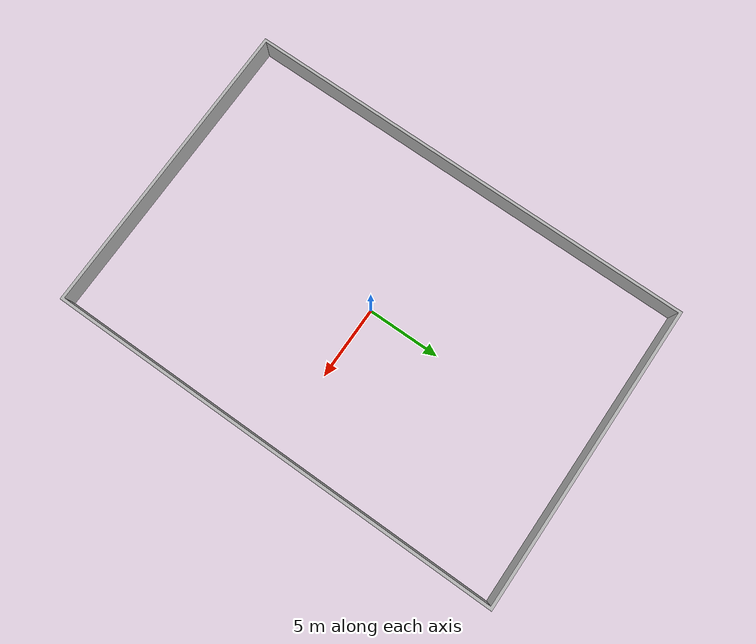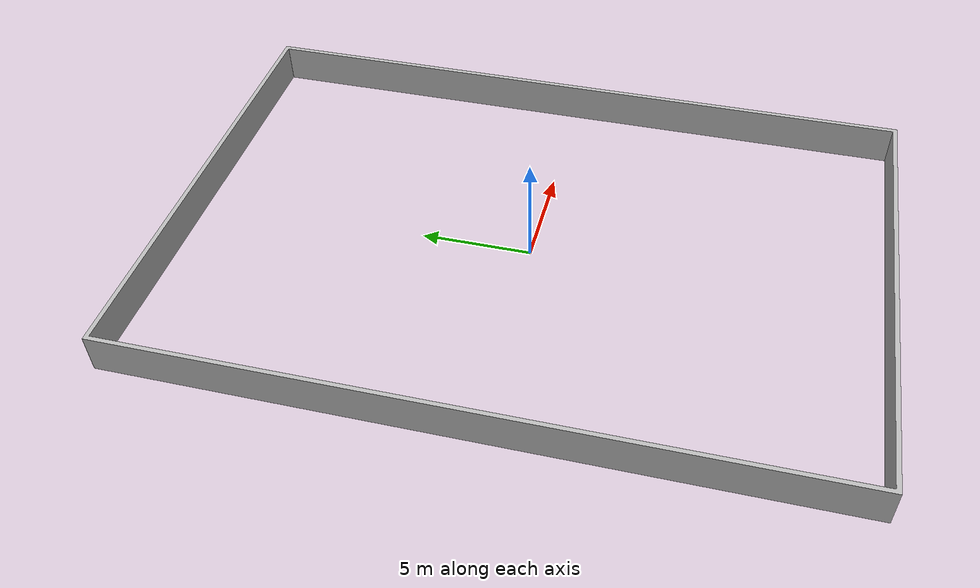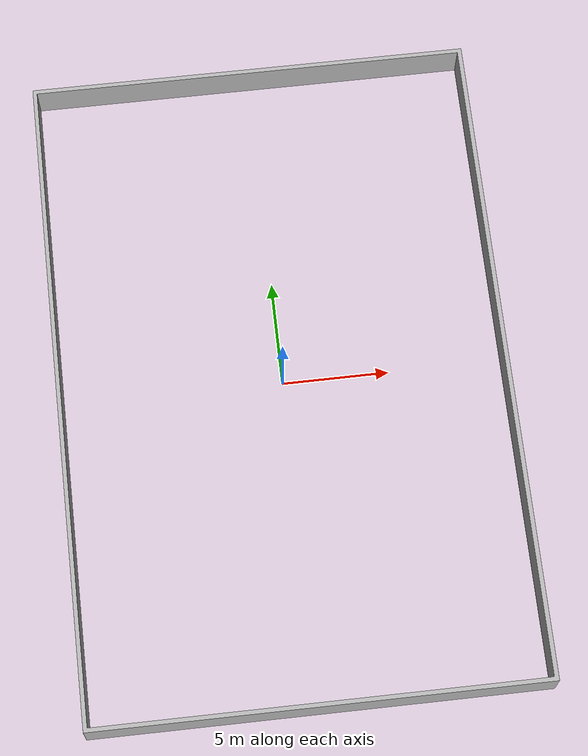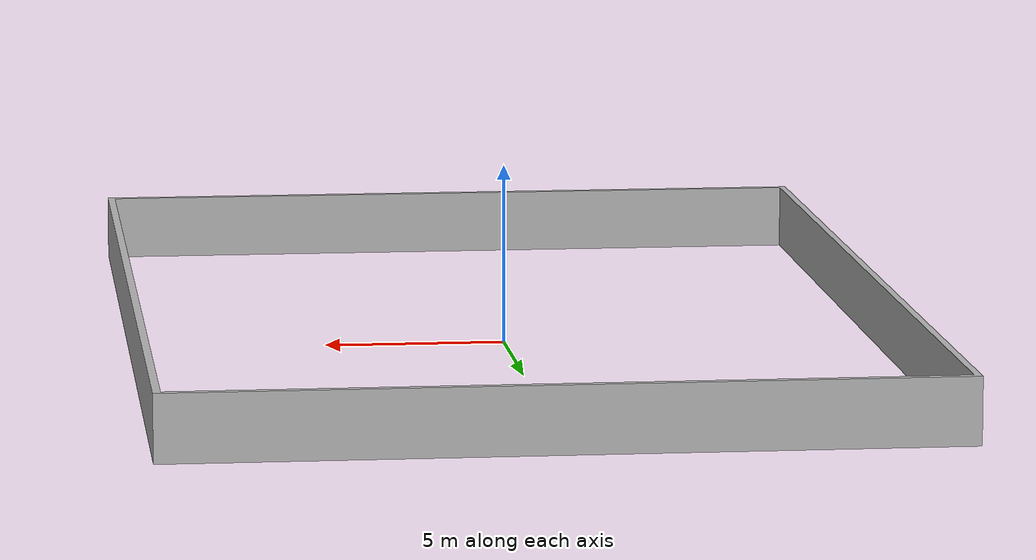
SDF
<?xml version="1.0" ?>
<sdf version="1.6">
  <model name="warehouse_wall">
    <link name="link">
      <inertial>
        <mass>1000</mass>
        <inertia>
          <ixx>840083.33</ixx>
          <ixy>0</ixy>
          <ixz>0</ixz>
          <iyy>475500.0</iyy>
          <iyz>0</iyz>
          <izz>1302083.33</izz>
        </inertia>
      </inertial>
      <collision name="collision">
        <geometry>
          <mesh>
            <uri>model://warehouse_wall/meshes/warehouse_wall_collision.DAE</uri>
            <scale>1.5 1.5 0.2</scale>
          </mesh>
        </geometry>
		<surface>
          <friction>
            <ode>
              <mu>0.5</mu>
              <mu2>0.5</mu2>
              <fdir1>0 0 0</fdir1>
              <slip1>0</slip1>
              <slip2>0</slip2>
            </ode>
        </friction>
          </surface>
      </collision>
      <visual name="visual">
	    <geometry>
          <mesh>
            <uri>model://warehouse_wall/meshes/warehouse_wall_visual.DAE</uri>
	   <scale>1.5 1.5 0.2</scale>
          </mesh>
        </geometry>
      <meta> <layer> 2 </layer></meta>
</visual>
    </link>
<static>1</static>
  </model>
</sdf>
